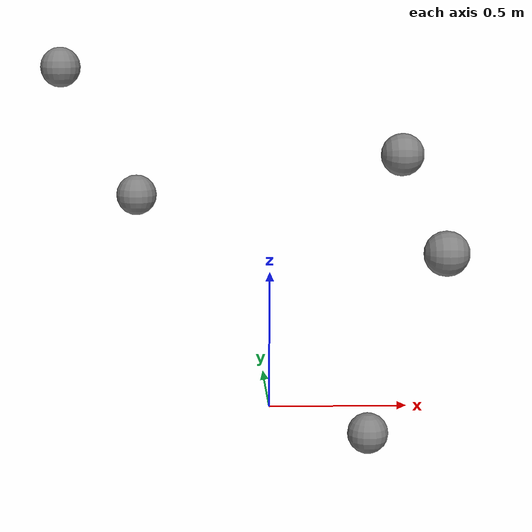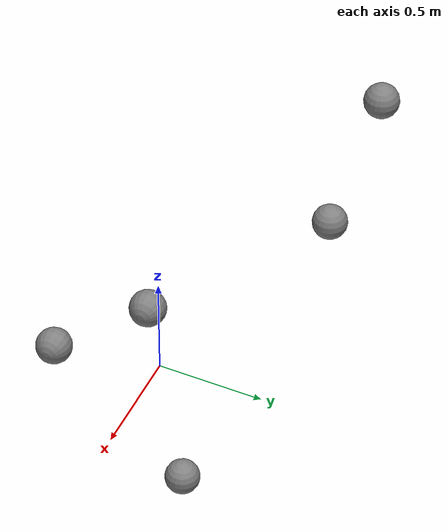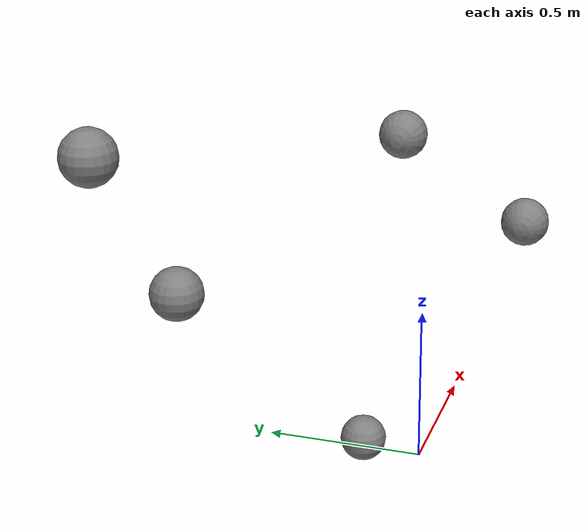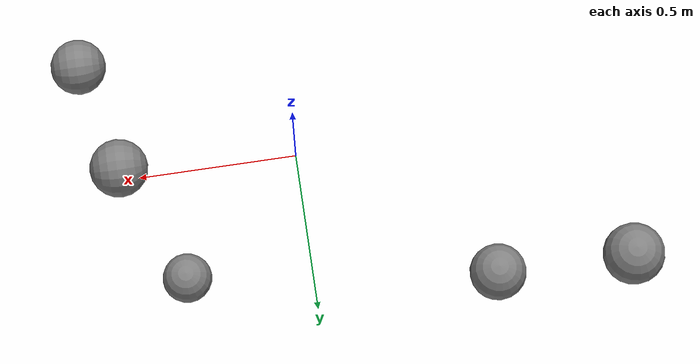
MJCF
<mujoco model="camlight-tree">
  <compiler angle="radian" fusestatic="false"/>
  <default><geom type="sphere" size="0.08" mass="1"/></default>
  <worldbody>
    <camera name="world" pos="2 -3 1" quat="0.5 0.5 0.5 0.5"/>
    <light name="world" pos="-2 3 1" dir="1 2 -3"/>
    <body name="hinge" pos="0.3 -0.4 0.5" quat="0.5 0.5 0.5 0.5">
      <joint type="hinge" axis="0 0 1" ref="0.15"/>
      <geom pos="0.2 0.1 0.3"/>
      <camera name="fixed" pos="1 2 3" quat="0 1 0 0"/>
      <camera name="track" mode="track" pos="-2 3 1"/>
      <camera name="com" mode="trackcom" pos="2 -1 3"/>
      <camera name="target" mode="targetbody" target="slider" pos="1 -2 3"/>
      <camera name="targetcom" mode="targetbodycom" target="mocap" pos="3 2 -1"/>
      <camera name="missing" pos="1 3 2" quat="0.5 0.5 0.5 0.5"/>
      <camera name="missingcom" pos="-1 2 3"/>
      <light name="fixed" pos="-1 2 3" dir="2 -1 3"/>
      <light name="track" mode="track" pos="2 -3 1" dir="-1 2 3"/>
      <light name="com" mode="trackcom" pos="-2 1 3" dir="1 -2 3"/>
      <light name="target" mode="targetbody" target="slider" pos="2 1 3"/>
      <light name="targetcom" mode="targetbodycom" target="mocap" pos="-3 -2 1"/>
      <light name="missing" pos="-1 -3 -2" dir="1 3 -2"/>
      <light name="missingcom" pos="1 -2 -3" dir="1 -2 3"/>
      <body pos="0.5 0.2 -0.1"><geom pos="0.1 0.2 0.3" mass="2"/></body>
    </body>
    <body name="mocap" mocap="true" pos="-0.8 0.7 1.2" quat="0 1 0 0">
      <geom/><body pos="0.3 0.1 0.5"><geom mass="3"/></body>
    </body>
    <body name="slider" pos="0.4 0.3 -0.2">
      <joint type="slide" axis="0 1 0" ref="0.2"/><geom/>
    </body>
  </worldbody>
</mujoco>
